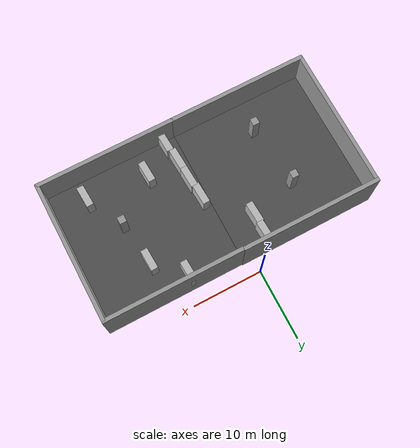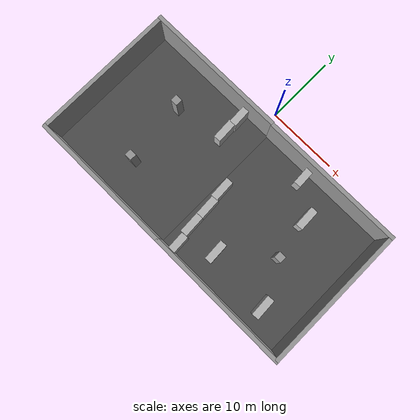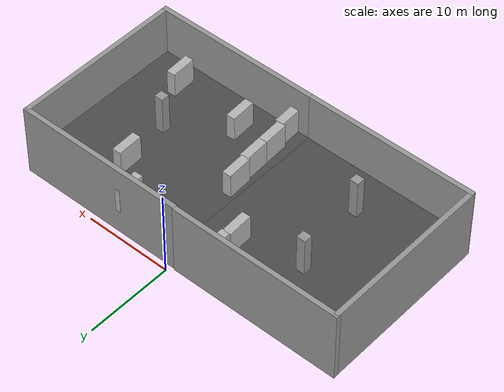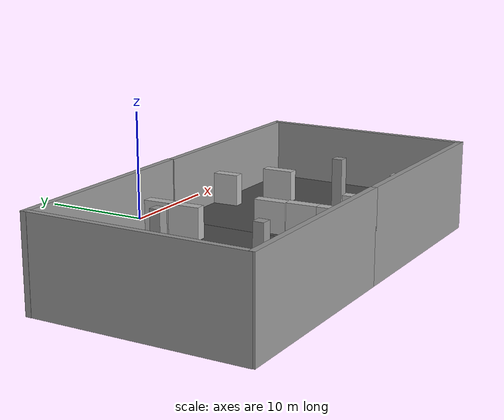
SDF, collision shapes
<?xml version='1.0'?>
<sdf version='1.6'>
  <model name='test_map'>
    <link name='link'>
      <pose frame=''>-8.81665 -2.69351 1.4 0 -0 0</pose>
      <inertial>
        <inertia>
          <ixx>nan</ixx>
          <ixy>0</ixy>
          <ixz>0</ixz>
          <iyy>nan</iyy>
          <iyz>0</iyz>
          <izz>nan</izz>
        </inertia>
        <mass>0</mass>
        <pose frame=''>0 0 0 0 -0 0</pose>
      </inertial>
      <self_collide>0</self_collide>
      <kinematic>0</kinematic>
      <visual name='visual'>
        <cast_shadows>0</cast_shadows>
        <geometry>
          <box>
            <size>20.2056 0.556506 8.63552</size>
          </box>
        </geometry>
        <material>
          <script>
            <uri>model://grey_wall/materials/scripts</uri>
            <uri>model://grey_wall/materials/textures</uri>
            <name>vrc/grey_wall</name>
          </script>
          <ambient>1 1 1 1</ambient>
          <diffuse>1 1 1 1</diffuse>
          <specular>0 0 0 1</specular>
          <emissive>0 0 0 1</emissive>
        </material>
        <pose frame=''>0 0 0 0 -0 0</pose>
        <transparency>0</transparency>
      </visual>
      <collision name='collision'>
        <laser_retro>0</laser_retro>
        <max_contacts>10</max_contacts>
        <pose frame=''>0 0 0 0 -0 0</pose>
        <geometry>
          <box>
            <size>20.2056 0.556506 8.63552</size>
          </box>
        </geometry>
        <surface>
          <friction>
            <ode>
              <mu>1</mu>
              <mu2>1</mu2>
              <fdir1>0 0 0</fdir1>
              <slip1>0</slip1>
              <slip2>0</slip2>
            </ode>
            <torsional>
              <coefficient>1</coefficient>
              <patch_radius>0</patch_radius>
              <surface_radius>0</surface_radius>
              <use_patch_radius>1</use_patch_radius>
              <ode>
                <slip>0</slip>
              </ode>
            </torsional>
          </friction>
          <bounce>
            <restitution_coefficient>0</restitution_coefficient>
            <threshold>1e+06</threshold>
          </bounce>
          <contact>
            <collide_without_contact>0</collide_without_contact>
            <collide_without_contact_bitmask>1</collide_without_contact_bitmask>
            <collide_bitmask>1</collide_bitmask>
            <ode>
              <soft_cfm>0</soft_cfm>
              <soft_erp>0.2</soft_erp>
              <kp>1e+13</kp>
              <kd>1</kd>
              <max_vel>0.01</max_vel>
              <min_depth>0</min_depth>
            </ode>
            <bullet>
              <split_impulse>1</split_impulse>
              <split_impulse_penetration_threshold>-0.01</split_impulse_penetration_threshold>
              <soft_cfm>0</soft_cfm>
              <soft_erp>0.2</soft_erp>
              <kp>1e+13</kp>
              <kd>1</kd>
            </bullet>
          </contact>
        </surface>
      </collision>
    </link>
    <link name='link_0'>
      <pose frame=''>13.3121 -13.7936 0.5 0 -0 0</pose>
      <inertial>
        <mass>8.26237</mass>
        <inertia>
          <ixx>47.6924</ixx>
          <ixy>0</ixy>
          <ixz>0</ixz>
          <iyy>47.6924</iyy>
          <iyz>0</iyz>
          <izz>1.37706</izz>
        </inertia>
        <pose frame=''>0 0 0 0 -0 0</pose>
      </inertial>
      <self_collide>0</self_collide>
      <kinematic>0</kinematic>
      <visual name='visual'>
        <pose frame=''>0 0 0 0 -0 0</pose>
        <geometry>
          <box>
            <size>1 1 8.26237</size>
          </box>
        </geometry>
        <material>
          <lighting>1</lighting>
          <script>
            <uri>file://media/materials/scripts/gazebo.material</uri>
            <name>Gazebo/Grey</name>
          </script>
          <ambient>0.3 0.3 0.3 1</ambient>
          <diffuse>0.7 0.7 0.7 1</diffuse>
          <specular>0.01 0.01 0.01 1</specular>
          <emissive>0 0 0 1</emissive>
        </material>
        <cast_shadows>1</cast_shadows>
        <transparency>0</transparency>
      </visual>
      <collision name='collision'>
        <laser_retro>0</laser_retro>
        <max_contacts>10</max_contacts>
        <pose frame=''>0 0 0 0 -0 0</pose>
        <geometry>
          <box>
            <size>1 1 8.26237</size>
          </box>
        </geometry>
        <surface>
          <friction>
            <ode>
              <mu>1</mu>
              <mu2>1</mu2>
              <fdir1>0 0 0</fdir1>
              <slip1>0</slip1>
              <slip2>0</slip2>
            </ode>
            <torsional>
              <coefficient>1</coefficient>
              <patch_radius>0</patch_radius>
              <surface_radius>0</surface_radius>
              <use_patch_radius>1</use_patch_radius>
              <ode>
                <slip>0</slip>
              </ode>
            </torsional>
          </friction>
          <bounce>
            <restitution_coefficient>0</restitution_coefficient>
            <threshold>1e+06</threshold>
          </bounce>
          <contact>
            <collide_without_contact>0</collide_without_contact>
            <collide_without_contact_bitmask>1</collide_without_contact_bitmask>
            <collide_bitmask>1</collide_bitmask>
            <ode>
              <soft_cfm>0</soft_cfm>
              <soft_erp>0.2</soft_erp>
              <kp>1e+13</kp>
              <kd>1</kd>
              <max_vel>0.01</max_vel>
              <min_depth>0</min_depth>
            </ode>
            <bullet>
              <split_impulse>1</split_impulse>
              <split_impulse_penetration_threshold>-0.01</split_impulse_penetration_threshold>
              <soft_cfm>0</soft_cfm>
              <soft_erp>0.2</soft_erp>
              <kp>1e+13</kp>
              <kd>1</kd>
            </bullet>
          </contact>
        </surface>
      </collision>
    </link>
    <link name='link_0_clone'>
      <pose frame=''>-8.68786 -17.7936 0.5 0 -0 0</pose>
      <inertial>
        <mass>8.26237</mass>
        <inertia>
          <ixx>47.6924</ixx>
          <ixy>0</ixy>
          <ixz>0</ixz>
          <iyy>47.6924</iyy>
          <iyz>0</iyz>
          <izz>1.37706</izz>
        </inertia>
        <pose frame=''>0 0 0 0 -0 0</pose>
      </inertial>
      <self_collide>0</self_collide>
      <kinematic>0</kinematic>
      <visual name='visual'>
        <pose frame=''>0 0 0 0 -0 0</pose>
        <geometry>
          <box>
            <size>1 1 8.26237</size>
          </box>
        </geometry>
        <material>
          <lighting>1</lighting>
          <script>
            <uri>file://media/materials/scripts/gazebo.material</uri>
            <name>Gazebo/Grey</name>
          </script>
          <ambient>0.3 0.3 0.3 1</ambient>
          <diffuse>0.7 0.7 0.7 1</diffuse>
          <specular>0.01 0.01 0.01 1</specular>
          <emissive>0 0 0 1</emissive>
          <shader type='pixel'/>
        </material>
        <cast_shadows>1</cast_shadows>
        <transparency>0</transparency>
      </visual>
      <collision name='collision'>
        <laser_retro>0</laser_retro>
        <max_contacts>10</max_contacts>
        <pose frame=''>0 0 0 0 -0 0</pose>
        <geometry>
          <box>
            <size>1 1 8.26237</size>
          </box>
        </geometry>
        <surface>
          <friction>
            <ode>
              <mu>1</mu>
              <mu2>1</mu2>
              <fdir1>0 0 0</fdir1>
              <slip1>0</slip1>
              <slip2>0</slip2>
            </ode>
            <torsional>
              <coefficient>1</coefficient>
              <patch_radius>0</patch_radius>
              <surface_radius>0</surface_radius>
              <use_patch_radius>1</use_patch_radius>
              <ode>
                <slip>0</slip>
              </ode>
            </torsional>
          </friction>
          <bounce>
            <restitution_coefficient>0</restitution_coefficient>
            <threshold>1e+06</threshold>
          </bounce>
          <contact>
            <collide_without_contact>0</collide_without_contact>
            <collide_without_contact_bitmask>1</collide_without_contact_bitmask>
            <collide_bitmask>1</collide_bitmask>
            <ode>
              <soft_cfm>0</soft_cfm>
              <soft_erp>0.2</soft_erp>
              <kp>1e+13</kp>
              <kd>1</kd>
              <max_vel>0.01</max_vel>
              <min_depth>0</min_depth>
            </ode>
            <bullet>
              <split_impulse>1</split_impulse>
              <split_impulse_penetration_threshold>-0.01</split_impulse_penetration_threshold>
              <soft_cfm>0</soft_cfm>
              <soft_erp>0.2</soft_erp>
              <kp>1e+13</kp>
              <kd>1</kd>
            </bullet>
          </contact>
        </surface>
      </collision>
    </link>
    <link name='link_0_clone_0'>
      <pose frame=''>-9.68786 -8.7936 0.5 0 -0 0</pose>
      <inertial>
        <mass>8.26237</mass>
        <inertia>
          <ixx>47.6924</ixx>
          <ixy>0</ixy>
          <ixz>0</ixz>
          <iyy>47.6924</iyy>
          <iyz>0</iyz>
          <izz>1.37706</izz>
        </inertia>
        <pose frame=''>0 0 0 0 -0 0</pose>
      </inertial>
      <self_collide>0</self_collide>
      <kinematic>0</kinematic>
      <visual name='visual'>
        <pose frame=''>0 0 0 0 -0 0</pose>
        <geometry>
          <box>
            <size>1 1 8.26237</size>
          </box>
        </geometry>
        <material>
          <lighting>1</lighting>
          <script>
            <uri>file://media/materials/scripts/gazebo.material</uri>
            <name>Gazebo/Grey</name>
          </script>
          <ambient>0.3 0.3 0.3 1</ambient>
          <diffuse>0.7 0.7 0.7 1</diffuse>
          <specular>0.01 0.01 0.01 1</specular>
          <emissive>0 0 0 1</emissive>
          <shader type='pixel'/>
        </material>
        <cast_shadows>1</cast_shadows>
        <transparency>0</transparency>
      </visual>
      <collision name='collision'>
        <laser_retro>0</laser_retro>
        <max_contacts>10</max_contacts>
        <pose frame=''>0 0 0 0 -0 0</pose>
        <geometry>
          <box>
            <size>1 1 8.26237</size>
          </box>
        </geometry>
        <surface>
          <friction>
            <ode>
              <mu>1</mu>
              <mu2>1</mu2>
              <fdir1>0 0 0</fdir1>
              <slip1>0</slip1>
              <slip2>0</slip2>
            </ode>
            <torsional>
              <coefficient>1</coefficient>
              <patch_radius>0</patch_radius>
              <surface_radius>0</surface_radius>
              <use_patch_radius>1</use_patch_radius>
              <ode>
                <slip>0</slip>
              </ode>
            </torsional>
          </friction>
          <bounce>
            <restitution_coefficient>0</restitution_coefficient>
            <threshold>1e+06</threshold>
          </bounce>
          <contact>
            <collide_without_contact>0</collide_without_contact>
            <collide_without_contact_bitmask>1</collide_without_contact_bitmask>
            <collide_bitmask>1</collide_bitmask>
            <ode>
              <soft_cfm>0</soft_cfm>
              <soft_erp>0.2</soft_erp>
              <kp>1e+13</kp>
              <kd>1</kd>
              <max_vel>0.01</max_vel>
              <min_depth>0</min_depth>
            </ode>
            <bullet>
              <split_impulse>1</split_impulse>
              <split_impulse_penetration_threshold>-0.01</split_impulse_penetration_threshold>
              <soft_cfm>0</soft_cfm>
              <soft_erp>0.2</soft_erp>
              <kp>1e+13</kp>
              <kd>1</kd>
            </bullet>
          </contact>
        </surface>
      </collision>
    </link>
    <link name='link_clone'>
      <pose frame=''>-8.68786 -22.7936 1.4 0 -0 0</pose>
      <inertial>
        <inertia>
          <ixx>nan</ixx>
          <ixy>0</ixy>
          <ixz>0</ixz>
          <iyy>nan</iyy>
          <iyz>0</iyz>
          <izz>nan</izz>
        </inertia>
        <mass>0</mass>
        <pose frame=''>0 0 0 0 -0 0</pose>
      </inertial>
      <self_collide>0</self_collide>
      <kinematic>0</kinematic>
      <visual name='visual'>
        <cast_shadows>0</cast_shadows>
        <geometry>
          <box>
            <size>20.2056 0.556506 8.63552</size>
          </box>
        </geometry>
        <material>
          <script>
            <uri>model://grey_wall/materials/scripts</uri>
            <uri>model://grey_wall/materials/textures</uri>
            <name>vrc/grey_wall</name>
          </script>
          <ambient>1 1 1 1</ambient>
          <diffuse>1 1 1 1</diffuse>
          <specular>0 0 0 1</specular>
          <emissive>0 0 0 1</emissive>
          <shader type='pixel'/>
        </material>
        <pose frame=''>0 0 0 0 -0 0</pose>
        <transparency>0</transparency>
      </visual>
      <collision name='collision'>
        <laser_retro>0</laser_retro>
        <max_contacts>10</max_contacts>
        <pose frame=''>0 0 0 0 -0 0</pose>
        <geometry>
          <box>
            <size>20.2056 0.556506 8.63552</size>
          </box>
        </geometry>
        <surface>
          <friction>
            <ode>
              <mu>1</mu>
              <mu2>1</mu2>
              <fdir1>0 0 0</fdir1>
              <slip1>0</slip1>
              <slip2>0</slip2>
            </ode>
            <torsional>
              <coefficient>1</coefficient>
              <patch_radius>0</patch_radius>
              <surface_radius>0</surface_radius>
              <use_patch_radius>1</use_patch_radius>
              <ode>
                <slip>0</slip>
              </ode>
            </torsional>
          </friction>
          <bounce>
            <restitution_coefficient>0</restitution_coefficient>
            <threshold>1e+06</threshold>
          </bounce>
          <contact>
            <collide_without_contact>0</collide_without_contact>
            <collide_without_contact_bitmask>1</collide_without_contact_bitmask>
            <collide_bitmask>1</collide_bitmask>
            <ode>
              <soft_cfm>0</soft_cfm>
              <soft_erp>0.2</soft_erp>
              <kp>1e+13</kp>
              <kd>1</kd>
              <max_vel>0.01</max_vel>
              <min_depth>0</min_depth>
            </ode>
            <bullet>
              <split_impulse>1</split_impulse>
              <split_impulse_penetration_threshold>-0.01</split_impulse_penetration_threshold>
              <soft_cfm>0</soft_cfm>
              <soft_erp>0.2</soft_erp>
              <kp>1e+13</kp>
              <kd>1</kd>
            </bullet>
          </contact>
        </surface>
      </collision>
    </link>
    <link name='link_clone_0'>
      <pose frame=''>11.3121 -2.7936 1.4 0 -0 0</pose>
      <inertial>
        <inertia>
          <ixx>nan</ixx>
          <ixy>0</ixy>
          <ixz>0</ixz>
          <iyy>nan</iyy>
          <iyz>0</iyz>
          <izz>nan</izz>
        </inertia>
        <mass>0</mass>
        <pose frame=''>0 0 0 0 -0 0</pose>
      </inertial>
      <self_collide>0</self_collide>
      <kinematic>0</kinematic>
      <visual name='visual'>
        <cast_shadows>0</cast_shadows>
        <geometry>
          <box>
            <size>20.2056 0.556506 8.63552</size>
          </box>
        </geometry>
        <material>
          <script>
            <uri>model://grey_wall/materials/scripts</uri>
            <uri>model://grey_wall/materials/textures</uri>
            <name>vrc/grey_wall</name>
          </script>
          <ambient>1 1 1 1</ambient>
          <diffuse>1 1 1 1</diffuse>
          <specular>0 0 0 1</specular>
          <emissive>0 0 0 1</emissive>
          <shader type='pixel'/>
        </material>
        <pose frame=''>0 0 0 0 -0 0</pose>
        <transparency>0</transparency>
      </visual>
      <collision name='collision'>
        <laser_retro>0</laser_retro>
        <max_contacts>10</max_contacts>
        <pose frame=''>0 0 0 0 -0 0</pose>
        <geometry>
          <box>
            <size>20.2056 0.556506 8.63552</size>
          </box>
        </geometry>
        <surface>
          <friction>
            <ode>
              <mu>1</mu>
              <mu2>1</mu2>
              <fdir1>0 0 0</fdir1>
              <slip1>0</slip1>
              <slip2>0</slip2>
            </ode>
            <torsional>
              <coefficient>1</coefficient>
              <patch_radius>0</patch_radius>
              <surface_radius>0</surface_radius>
              <use_patch_radius>1</use_patch_radius>
              <ode>
                <slip>0</slip>
              </ode>
            </torsional>
          </friction>
          <bounce>
            <restitution_coefficient>0</restitution_coefficient>
            <threshold>1e+06</threshold>
          </bounce>
          <contact>
            <collide_without_contact>0</collide_without_contact>
            <collide_without_contact_bitmask>1</collide_without_contact_bitmask>
            <collide_bitmask>1</collide_bitmask>
            <ode>
              <soft_cfm>0</soft_cfm>
              <soft_erp>0.2</soft_erp>
              <kp>1e+13</kp>
              <kd>1</kd>
              <max_vel>0.01</max_vel>
              <min_depth>0</min_depth>
            </ode>
            <bullet>
              <split_impulse>1</split_impulse>
              <split_impulse_penetration_threshold>-0.01</split_impulse_penetration_threshold>
              <soft_cfm>0</soft_cfm>
              <soft_erp>0.2</soft_erp>
              <kp>1e+13</kp>
              <kd>1</kd>
            </bullet>
          </contact>
        </surface>
      </collision>
    </link>
    <link name='link_clone_0_clone'>
      <pose frame=''>21.1367 -12.8514 1.4 0 0 -1.56995</pose>
      <inertial>
        <inertia>
          <ixx>nan</ixx>
          <ixy>0</ixy>
          <ixz>0</ixz>
          <iyy>nan</iyy>
          <iyz>0</iyz>
          <izz>nan</izz>
        </inertia>
        <mass>0</mass>
        <pose frame=''>0 0 0 0 -0 0</pose>
      </inertial>
      <self_collide>0</self_collide>
      <kinematic>0</kinematic>
      <visual name='visual'>
        <cast_shadows>0</cast_shadows>
        <geometry>
          <box>
            <size>20.2056 0.556506 8.63552</size>
          </box>
        </geometry>
        <material>
          <script>
            <uri>model://grey_wall/materials/scripts</uri>
            <uri>model://grey_wall/materials/textures</uri>
            <name>vrc/grey_wall</name>
          </script>
          <ambient>1 1 1 1</ambient>
          <diffuse>1 1 1 1</diffuse>
          <specular>0 0 0 1</specular>
          <emissive>0 0 0 1</emissive>
          <shader type='pixel'/>
        </material>
        <pose frame=''>0 0 0 0 -0 0</pose>
        <transparency>0</transparency>
      </visual>
      <collision name='collision'>
        <laser_retro>0</laser_retro>
        <max_contacts>10</max_contacts>
        <pose frame=''>0 0 0 0 -0 0</pose>
        <geometry>
          <box>
            <size>20.2056 0.556506 8.63552</size>
          </box>
        </geometry>
        <surface>
          <friction>
            <ode>
              <mu>1</mu>
              <mu2>1</mu2>
              <fdir1>0 0 0</fdir1>
              <slip1>0</slip1>
              <slip2>0</slip2>
            </ode>
            <torsional>
              <coefficient>1</coefficient>
              <patch_radius>0</patch_radius>
              <surface_radius>0</surface_radius>
              <use_patch_radius>1</use_patch_radius>
              <ode>
                <slip>0</slip>
              </ode>
            </torsional>
          </friction>
          <bounce>
            <restitution_coefficient>0</restitution_coefficient>
            <threshold>1e+06</threshold>
          </bounce>
          <contact>
            <collide_without_contact>0</collide_without_contact>
            <collide_without_contact_bitmask>1</collide_without_contact_bitmask>
            <collide_bitmask>1</collide_bitmask>
            <ode>
              <soft_cfm>0</soft_cfm>
              <soft_erp>0.2</soft_erp>
              <kp>1e+13</kp>
              <kd>1</kd>
              <max_vel>0.01</max_vel>
              <min_depth>0</min_depth>
            </ode>
            <bullet>
              <split_impulse>1</split_impulse>
              <split_impulse_penetration_threshold>-0.01</split_impulse_penetration_threshold>
              <soft_cfm>0</soft_cfm>
              <soft_erp>0.2</soft_erp>
              <kp>1e+13</kp>
              <kd>1</kd>
            </bullet>
          </contact>
        </surface>
      </collision>
    </link>
    <link name='link_clone_1'>
      <pose frame=''>11.3121 -22.7936 1.4 0 -0 0</pose>
      <inertial>
        <inertia>
          <ixx>nan</ixx>
          <ixy>0</ixy>
          <ixz>0</ixz>
          <iyy>nan</iyy>
          <iyz>0</iyz>
          <izz>nan</izz>
        </inertia>
        <mass>0</mass>
        <pose frame=''>0 0 0 0 -0 0</pose>
      </inertial>
      <self_collide>0</self_collide>
      <kinematic>0</kinematic>
      <visual name='visual'>
        <cast_shadows>0</cast_shadows>
        <geometry>
          <box>
            <size>20.2056 0.556506 8.63552</size>
          </box>
        </geometry>
        <material>
          <script>
            <uri>model://grey_wall/materials/scripts</uri>
            <uri>model://grey_wall/materials/textures</uri>
            <name>vrc/grey_wall</name>
          </script>
          <ambient>1 1 1 1</ambient>
          <diffuse>1 1 1 1</diffuse>
          <specular>0 0 0 1</specular>
          <emissive>0 0 0 1</emissive>
          <shader type='pixel'/>
        </material>
        <pose frame=''>0 0 0 0 -0 0</pose>
        <transparency>0</transparency>
      </visual>
      <collision name='collision'>
        <laser_retro>0</laser_retro>
        <max_contacts>10</max_contacts>
        <pose frame=''>0 0 0 0 -0 0</pose>
        <geometry>
          <box>
            <size>20.2056 0.556506 8.63552</size>
          </box>
        </geometry>
        <surface>
          <friction>
            <ode>
              <mu>1</mu>
              <mu2>1</mu2>
              <fdir1>0 0 0</fdir1>
              <slip1>0</slip1>
              <slip2>0</slip2>
            </ode>
            <torsional>
              <coefficient>1</coefficient>
              <patch_radius>0</patch_radius>
              <surface_radius>0</surface_radius>
              <use_patch_radius>1</use_patch_radius>
              <ode>
                <slip>0</slip>
              </ode>
            </torsional>
          </friction>
          <bounce>
            <restitution_coefficient>0</restitution_coefficient>
            <threshold>1e+06</threshold>
          </bounce>
          <contact>
            <collide_without_contact>0</collide_without_contact>
            <collide_without_contact_bitmask>1</collide_without_contact_bitmask>
            <collide_bitmask>1</collide_bitmask>
            <ode>
              <soft_cfm>0</soft_cfm>
              <soft_erp>0.2</soft_erp>
              <kp>1e+13</kp>
              <kd>1</kd>
              <max_vel>0.01</max_vel>
              <min_depth>0</min_depth>
            </ode>
            <bullet>
              <split_impulse>1</split_impulse>
              <split_impulse_penetration_threshold>-0.01</split_impulse_penetration_threshold>
              <soft_cfm>0</soft_cfm>
              <soft_erp>0.2</soft_erp>
              <kp>1e+13</kp>
              <kd>1</kd>
            </bullet>
          </contact>
        </surface>
      </collision>
    </link>
    <model name='asphalt_plane'>
      <static>1</static>
      <link name='link'>
        <collision name='collision'>
          <geometry>
            <box>
              <size>20 20 0.1</size>
            </box>
          </geometry>
          <max_contacts>10</max_contacts>
          <surface>
            <contact>
              <ode/>
            </contact>
            <bounce/>
            <friction>
              <torsional>
                <ode/>
              </torsional>
              <ode/>
            </friction>
          </surface>
        </collision>
        <visual name='visual'>
          <cast_shadows>0</cast_shadows>
          <geometry>
            <box>
              <size>20 20 0.1</size>
            </box>
          </geometry>
          <material>
            <script>
              <uri>model://asphalt_plane/materials/scripts</uri>
              <uri>model://asphalt_plane/materials/textures</uri>
              <name>vrc/asphalt</name>
            </script>
          </material>
        </visual>
        <self_collide>0</self_collide>
        <kinematic>0</kinematic>
        <gravity>1</gravity>
      </link>
      <pose frame=''>-8.68786 -12.7936 0 0 -0 0</pose>
    </model>
    <model name='asphalt_plane_0'>
      <static>1</static>
      <link name='link'>
        <collision name='collision'>
          <geometry>
            <box>
              <size>20 20 0.1</size>
            </box>
          </geometry>
          <max_contacts>10</max_contacts>
          <surface>
            <contact>
              <ode/>
            </contact>
            <bounce/>
            <friction>
              <torsional>
                <ode/>
              </torsional>
              <ode/>
            </friction>
          </surface>
        </collision>
        <visual name='visual'>
          <cast_shadows>0</cast_shadows>
          <geometry>
            <box>
              <size>20 20 0.1</size>
            </box>
          </geometry>
          <material>
            <script>
              <uri>model://asphalt_plane/materials/scripts</uri>
              <uri>model://asphalt_plane/materials/textures</uri>
              <name>vrc/asphalt</name>
            </script>
          </material>
        </visual>
        <self_collide>0</self_collide>
        <kinematic>0</kinematic>
        <gravity>1</gravity>
      </link>
      <pose frame=''>11.3121 -12.7936 0 0 -0 0</pose>
    </model>
    <model name='brick_box_3x1x3'>
      <static>1</static>
      <link name='chassis'>
        <pose frame=''>0 0 1.5 0 -0 0</pose>
        <collision name='collision'>
          <geometry>
            <box>
              <size>3 1 3</size>
            </box>
          </geometry>
          <max_contacts>10</max_contacts>
          <surface>
            <contact>
              <ode/>
            </contact>
            <bounce/>
            <friction>
              <torsional>
                <ode/>
              </torsional>
              <ode/>
            </friction>
          </surface>
        </collision>
        <visual name='visual'>
          <geometry>
            <mesh>
              <uri>model://brick_box_3x1x3/meshes/simple_box.dae</uri>
              <scale>3 1 3</scale>
            </mesh>
          </geometry>
          <material>
            <script>
              <uri>model://brick_box_3x1x3/materials/scripts</uri>
              <uri>model://brick_box_3x1x3/materials/textures</uri>
              <name>BrickBox/Diffuse</name>
            </script>
          </material>
        </visual>
        <self_collide>0</self_collide>
        <kinematic>0</kinematic>
        <gravity>1</gravity>
      </link>
      <pose frame=''>12.4737 -7.77477 0 0 0 -1.53347</pose>
    </model>
    <model name='brick_box_3x1x3_0'>
      <static>1</static>
      <link name='chassis'>
        <pose frame=''>0 0 1.5 0 -0 0</pose>
        <collision name='collision'>
          <geometry>
            <box>
              <size>3 1 3</size>
            </box>
          </geometry>
          <max_contacts>10</max_contacts>
          <surface>
            <contact>
              <ode/>
            </contact>
            <bounce/>
            <friction>
              <torsional>
                <ode/>
              </torsional>
              <ode/>
            </friction>
          </surface>
        </collision>
        <visual name='visual'>
          <geometry>
            <mesh>
              <uri>model://brick_box_3x1x3/meshes/simple_box.dae</uri>
              <scale>3 1 3</scale>
            </mesh>
          </geometry>
          <material>
            <script>
              <uri>model://brick_box_3x1x3/materials/scripts</uri>
              <uri>model://brick_box_3x1x3/materials/textures</uri>
              <name>BrickBox/Diffuse</name>
            </script>
          </material>
        </visual>
        <self_collide>0</self_collide>
        <kinematic>0</kinematic>
        <gravity>1</gravity>
      </link>
      <pose frame=''>2.28623 -12.6208 0 0 0 -1.51973</pose>
    </model>
    <model name='brick_box_3x1x3_0_clone'>
      <static>1</static>
      <link name='chassis'>
        <pose frame=''>0 0 1.5 0 -0 0</pose>
        <collision name='collision'>
          <geometry>
            <box>
              <size>3 1 3</size>
            </box>
          </geometry>
          <max_contacts>10</max_contacts>
          <surface>
            <contact>
              <ode/>
            </contact>
            <bounce/>
            <friction>
              <torsional>
                <ode/>
              </torsional>
              <ode/>
            </friction>
          </surface>
        </collision>
        <visual name='visual'>
          <geometry>
            <mesh>
              <uri>model://brick_box_3x1x3/meshes/simple_box.dae</uri>
              <scale>3 1 3</scale>
            </mesh>
          </geometry>
          <material>
            <script>
              <uri>model://brick_box_3x1x3/materials/scripts</uri>
              <uri>model://brick_box_3x1x3/materials/textures</uri>
              <name>BrickBox/Diffuse</name>
            </script>
          </material>
        </visual>
        <self_collide>0</self_collide>
        <kinematic>0</kinematic>
        <gravity>1</gravity>
      </link>
      <pose frame=''>-2.8317 -4.05244 0 0 0 -1.51973</pose>
    </model>
    <model name='brick_box_3x1x3_0_clone_0'>
      <static>1</static>
      <link name='chassis'>
        <pose frame=''>0 0 1.5 0 -0 0</pose>
        <collision name='collision'>
          <geometry>
            <box>
              <size>3 1 3</size>
            </box>
          </geometry>
          <max_contacts>10</max_contacts>
          <surface>
            <contact>
              <ode/>
            </contact>
            <bounce/>
            <friction>
              <torsional>
                <ode/>
              </torsional>
              <ode/>
            </friction>
          </surface>
        </collision>
        <visual name='visual'>
          <geometry>
            <mesh>
              <uri>model://brick_box_3x1x3/meshes/simple_box.dae</uri>
              <scale>3 1 3</scale>
            </mesh>
          </geometry>
          <material>
            <script>
              <uri>model://brick_box_3x1x3/materials/scripts</uri>
              <uri>model://brick_box_3x1x3/materials/textures</uri>
              <name>BrickBox/Diffuse</name>
            </script>
          </material>
        </visual>
        <self_collide>0</self_collide>
        <kinematic>0</kinematic>
        <gravity>1</gravity>
      </link>
      <pose frame=''>7.31214 -18.7936 0 0 0 -1.51973</pose>
    </model>
    <model name='brick_box_3x1x3_0_clone_1'>
      <static>1</static>
      <link name='chassis'>
        <pose frame=''>0 0 1.5 0 -0 0</pose>
        <collision name='collision'>
          <geometry>
            <box>
              <size>3 1 3</size>
            </box>
          </geometry>
          <max_contacts>10</max_contacts>
          <surface>
            <contact>
              <ode/>
            </contact>
            <bounce/>
            <friction>
              <torsional>
                <ode/>
              </torsional>
              <ode/>
            </friction>
          </surface>
        </collision>
        <visual name='visual'>
          <geometry>
            <mesh>
              <uri>model://brick_box_3x1x3/meshes/simple_box.dae</uri>
              <scale>3 1 3</scale>
            </mesh>
          </geometry>
          <material>
            <script>
              <uri>model://brick_box_3x1x3/materials/scripts</uri>
              <uri>model://brick_box_3x1x3/materials/textures</uri>
              <name>BrickBox/Diffuse</name>
            </script>
          </material>
        </visual>
        <self_collide>0</self_collide>
        <kinematic>0</kinematic>
        <gravity>1</gravity>
      </link>
      <pose frame=''>-2.8317 -6.95201 0 0 0 -1.51973</pose>
    </model>
    <model name='brick_box_3x1x3_0_clone_2'>
      <static>1</static>
      <link name='chassis'>
        <pose frame=''>0 0 1.5 0 -0 0</pose>
        <collision name='collision'>
          <geometry>
            <box>
              <size>3 1 3</size>
            </box>
          </geometry>
          <max_contacts>10</max_contacts>
          <surface>
            <contact>
              <ode/>
            </contact>
            <bounce/>
            <friction>
              <torsional>
                <ode/>
              </torsional>
              <ode/>
            </friction>
          </surface>
        </collision>
        <visual name='visual'>
          <geometry>
            <mesh>
              <uri>model://brick_box_3x1x3/meshes/simple_box.dae</uri>
              <scale>3 1 3</scale>
            </mesh>
          </geometry>
          <material>
            <script>
              <uri>model://brick_box_3x1x3/materials/scripts</uri>
              <uri>model://brick_box_3x1x3/materials/textures</uri>
              <name>BrickBox/Diffuse</name>
            </script>
          </material>
        </visual>
        <self_collide>0</self_collide>
        <kinematic>0</kinematic>
        <gravity>1</gravity>
      </link>
      <pose frame=''>2.60127 -15.5089 0 0 0 -1.51973</pose>
    </model>
    <model name='brick_box_3x1x3_0_clone_3'>
      <static>1</static>
      <link name='chassis'>
        <pose frame=''>0 0 1.5 0 -0 0</pose>
        <collision name='collision'>
          <geometry>
            <box>
              <size>3 1 3</size>
            </box>
          </geometry>
          <max_contacts>10</max_contacts>
          <surface>
            <contact>
              <ode/>
            </contact>
            <bounce/>
            <friction>
              <torsional>
                <ode/>
              </torsional>
              <ode/>
            </friction>
          </surface>
        </collision>
        <visual name='visual'>
          <geometry>
            <mesh>
              <uri>model://brick_box_3x1x3/meshes/simple_box.dae</uri>
              <scale>3 1 3</scale>
            </mesh>
          </geometry>
          <material>
            <script>
              <uri>model://brick_box_3x1x3/materials/scripts</uri>
              <uri>model://brick_box_3x1x3/materials/textures</uri>
              <name>BrickBox/Diffuse</name>
            </script>
          </material>
        </visual>
        <self_collide>0</self_collide>
        <kinematic>0</kinematic>
        <gravity>1</gravity>
      </link>
      <pose frame=''>2.75016 -18.5089 0 0 0 -1.51973</pose>
    </model>
    <model name='brick_box_3x1x3_0_clone_4'>
      <static>1</static>
      <link name='chassis'>
        <pose frame=''>0 0 1.5 0 -0 0</pose>
        <collision name='collision'>
          <geometry>
            <box>
              <size>3 1 3</size>
            </box>
          </geometry>
          <max_contacts>10</max_contacts>
          <surface>
            <contact>
              <ode/>
            </contact>
            <bounce/>
            <friction>
              <torsional>
                <ode/>
              </torsional>
              <ode/>
            </friction>
          </surface>
        </collision>
        <visual name='visual'>
          <geometry>
            <mesh>
              <uri>model://brick_box_3x1x3/meshes/simple_box.dae</uri>
              <scale>3 1 3</scale>
            </mesh>
          </geometry>
          <material>
            <script>
              <uri>model://brick_box_3x1x3/materials/scripts</uri>
              <uri>model://brick_box_3x1x3/materials/textures</uri>
              <name>BrickBox/Diffuse</name>
            </script>
          </material>
        </visual>
        <self_collide>0</self_collide>
        <kinematic>0</kinematic>
        <gravity>1</gravity>
      </link>
      <pose frame=''>3.1683 -21.5089 0 0 0 -1.51973</pose>
    </model>
    <model name='brick_box_3x1x3_0_clone_5'>
      <static>1</static>
      <link name='chassis'>
        <pose frame=''>0 0 1.5 0 -0 0</pose>
        <collision name='collision'>
          <geometry>
            <box>
              <size>3 1 3</size>
            </box>
          </geometry>
          <max_contacts>10</max_contacts>
          <surface>
            <contact>
              <ode/>
            </contact>
            <bounce/>
            <friction>
              <torsional>
                <ode/>
              </torsional>
              <ode/>
            </friction>
          </surface>
        </collision>
        <visual name='visual'>
          <geometry>
            <mesh>
              <uri>model://brick_box_3x1x3/meshes/simple_box.dae</uri>
              <scale>3 1 3</scale>
            </mesh>
          </geometry>
          <material>
            <script>
              <uri>model://brick_box_3x1x3/materials/scripts</uri>
              <uri>model://brick_box_3x1x3/materials/textures</uri>
              <name>BrickBox/Diffuse</name>
            </script>
          </material>
        </visual>
        <self_collide>0</self_collide>
        <kinematic>0</kinematic>
        <gravity>1</gravity>
      </link>
      <pose frame=''>8.57871 -4.0086 0 0 0 -1.51973</pose>
    </model>
    <model name='brick_box_3x1x3_0_clone_6'>
      <static>1</static>
      <link name='chassis'>
        <pose frame=''>0 0 1.5 0 -0 0</pose>
        <collision name='collision'>
          <geometry>
            <box>
              <size>3 1 3</size>
            </box>
          </geometry>
          <max_contacts>10</max_contacts>
          <surface>
            <contact>
              <ode/>
            </contact>
            <bounce/>
            <friction>
              <torsional>
                <ode/>
              </torsional>
              <ode/>
            </friction>
          </surface>
        </collision>
        <visual name='visual'>
          <geometry>
            <mesh>
              <uri>model://brick_box_3x1x3/meshes/simple_box.dae</uri>
              <scale>3 1 3</scale>
            </mesh>
          </geometry>
          <material>
            <script>
              <uri>model://brick_box_3x1x3/materials/scripts</uri>
              <uri>model://brick_box_3x1x3/materials/textures</uri>
              <name>BrickBox/Diffuse</name>
            </script>
          </material>
        </visual>
        <self_collide>0</self_collide>
        <kinematic>0</kinematic>
        <gravity>1</gravity>
      </link>
      <pose frame=''>16.1683 -19.5089 0 0 0 -1.51973</pose>
    </model>
    <model name='grey_wall_mw'>
      <link name='link'>
        <pose frame=''>-8.81665 -2.69351 1.4 0 -0 0</pose>
        <inertial>
          <inertia>
            <ixx>nan</ixx>
            <ixy>0</ixy>
            <ixz>0</ixz>
            <iyy>nan</iyy>
            <iyz>0</iyz>
            <izz>nan</izz>
          </inertia>
          <mass>0</mass>
          <pose frame=''>0 0 0 0 -0 0</pose>
        </inertial>
        <self_collide>0</self_collide>
        <kinematic>0</kinematic>
        <visual name='visual'>
          <cast_shadows>0</cast_shadows>
          <geometry>
            <box>
              <size>20.2056 0.556506 8.63552</size>
            </box>
          </geometry>
          <material>
            <script>
              <uri>model://grey_wall/materials/scripts</uri>
              <uri>model://grey_wall/materials/textures</uri>
              <name>vrc/grey_wall</name>
            </script>
            <ambient>1 1 1 1</ambient>
            <diffuse>1 1 1 1</diffuse>
            <specular>0 0 0 1</specular>
            <emissive>0 0 0 1</emissive>
          </material>
          <pose frame=''>0 0 0 0 -0 0</pose>
          <transparency>0</transparency>
        </visual>
        <collision name='collision'>
          <laser_retro>0</laser_retro>
          <max_contacts>10</max_contacts>
          <pose frame=''>0 0 0 0 -0 0</pose>
          <geometry>
            <box>
              <size>20.2056 0.556506 8.63552</size>
            </box>
          </geometry>
          <surface>
            <friction>
              <ode>
                <mu>1</mu>
                <mu2>1</mu2>
                <fdir1>0 0 0</fdir1>
                <slip1>0</slip1>
                <slip2>0</slip2>
              </ode>
              <torsional>
                <coefficient>1</coefficient>
                <patch_radius>0</patch_radius>
                <surface_radius>0</surface_radius>
                <use_patch_radius>1</use_patch_radius>
                <ode>
                  <slip>0</slip>
                </ode>
              </torsional>
            </friction>
            <bounce>
              <restitution_coefficient>0</restitution_coefficient>
              <threshold>1e+06</threshold>
            </bounce>
            <contact>
              <collide_without_contact>0</collide_without_contact>
              <collide_without_contact_bitmask>1</collide_without_contact_bitmask>
              <collide_bitmask>1</collide_bitmask>
              <ode>
                <soft_cfm>0</soft_cfm>
                <soft_erp>0.2</soft_erp>
                <kp>1e+13</kp>
                <kd>1</kd>
                <max_vel>0.01</max_vel>
                <min_depth>0</min_depth>
              </ode>
              <bullet>
                <split_impulse>1</split_impulse>
                <split_impulse_penetration_threshold>-0.01</split_impulse_penetration_threshold>
                <soft_cfm>0</soft_cfm>
                <soft_erp>0.2</soft_erp>
                <kp>1e+13</kp>
                <kd>1</kd>
              </bullet>
            </contact>
          </surface>
        </collision>
        <gravity>1</gravity>
      </link>
      <static>1</static>
      <allow_auto_disable>1</allow_auto_disable>
      <pose frame=''>-21.3059 -3.97378 0 0 -0 1.57323</pose>
    </model>
    <static>1</static>
    <allow_auto_disable>1</allow_auto_disable>
  </model>
</sdf>
